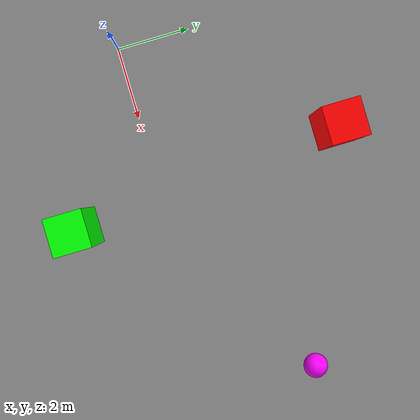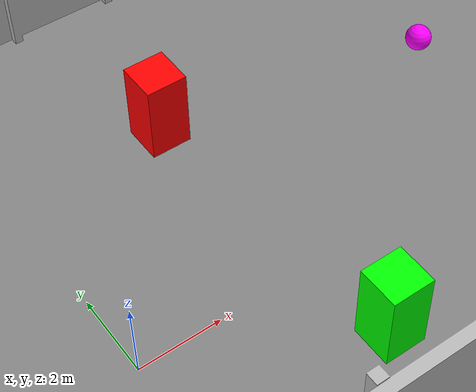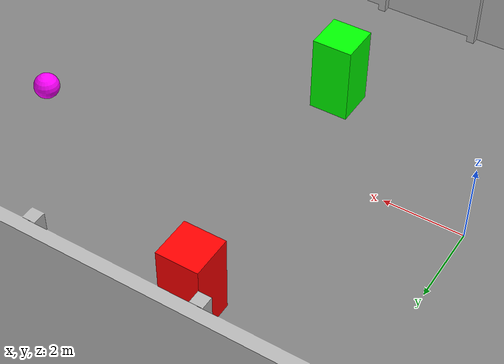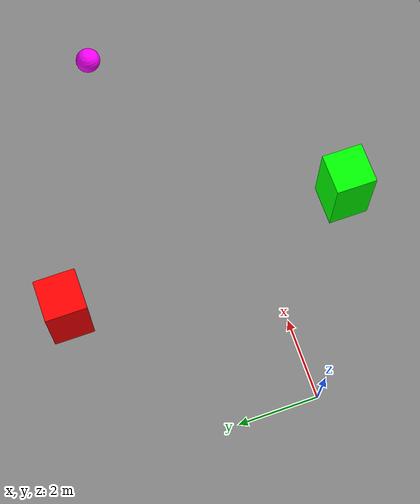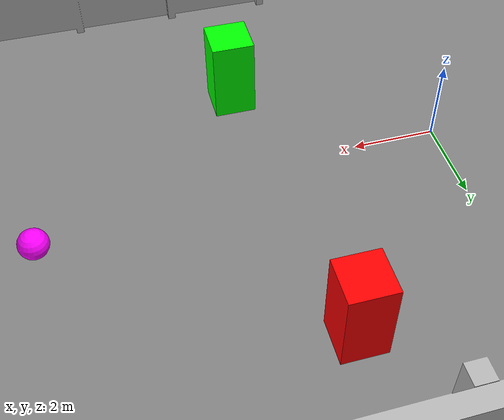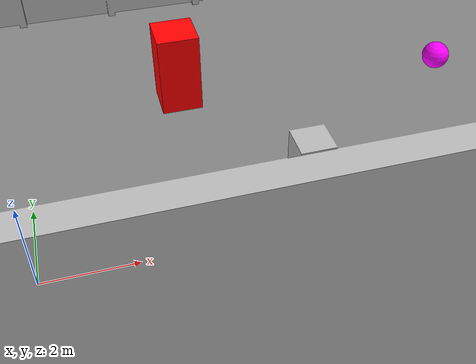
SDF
<sdf version="1.10">
 <world name="cranavgym_drone_sim">
  <physics name="5ms" type="ignored">
   <max_step_size>0.0060000000000000001</max_step_size>
   <real_time_factor>1</real_time_factor>
  </physics>
  <plugin name="gz::sim::systems::Physics" filename="gz-sim-physics-system"/>
  <plugin name="gz::sim::systems::SceneBroadcaster" filename="gz-sim-scene-broadcaster-system"/>
  <plugin name="gz::sim::systems::UserCommands" filename="gz-sim-user-commands-system"/>
  <plugin name="gz::sim::systems::Sensors" filename="gz-sim-sensors-system">
   <render_engine>ogre2</render_engine>
  </plugin>
  <gravity>0 0 -9.8000000000000007</gravity>
  <magnetic_field>5.5644999999999998e-06 2.2875799999999999e-05 -4.2388400000000002e-05</magnetic_field>
  <atmosphere type="adiabatic"/>
  <scene>
   <ambient>0.400000006 0.400000006 0.400000006 1</ambient>
   <background>0.699999988 0.699999988 0.699999988 1</background>
   <shadows>false</shadows>
  </scene>
  <include>
   <uri>file:///home/paris/cranfield-ros2-drone-ws/src/my_drone_sim/models/flight_arena</uri>
   <name>flight_arena</name>
  </include>
  <include>
   <uri>file:///home/paris/cranfield-ros2-drone-ws/src/my_drone_sim/models/goal</uri>
   <name>goal</name>
   <pose>9.392970085144043 2.6092100143432617 1.9244006872177124 0 0 0</pose>
  </include>
  <include>
   <uri>file:///home/paris/cranfield-ros2-drone-ws/src/my_drone_sim/models/red_box</uri>
   <name>red_box</name>
   <pose>3.7851901054382515 5.0201802253722274 1.0999990992111006 -1.5236740656852524e-16 -4.641351546156203e-17 2.9599521786766593e-16</pose>
  </include>
  <include>
   <uri>file:///home/paris/cranfield-ros2-drone-ws/src/my_drone_sim/models/green_box</uri>
   <name>green_box</name>
   <pose>4.5066299438476376 -2.3598799705505371 1.0999990996104259 -1.5538416812161362e-18 7.2210260754845823e-17 7.6527475355034437e-16</pose>
  </include>
  <light name="sun" type="directional">
   <pose>0 0 1000 0 0 0</pose>
   <intensity>1</intensity>
   <direction>-0.5 0.10000000000000001 -0.90000000000000002</direction>
   <diffuse>0.800000012 0.800000012 0.800000012 1</diffuse>
   <specular>0.200000003 0.200000003 0.200000003 1</specular>
   <attenuation>
    <range>1005</range>
    <linear>0.0099999997764825821</linear>
    <constant>0.89999997615814209</constant>
    <quadratic>0.0010000000474974513</quadratic>
   </attenuation>
   <spot><inner_angle>0</inner_angle><outer_angle>0</outer_angle><falloff>0</falloff></spot>
  </light>
 </world>
</sdf>

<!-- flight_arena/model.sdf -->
<sdf version="1.6">
  <model name="flight_arena">
    <static>true</static>
    <link name="link">
      <visual name="vis">
        <geometry>
          <mesh><uri>Flight_arena_3.dae</uri></mesh>
        </geometry>
      </visual>
      <collision name="coll">
        <geometry>
          <mesh><uri>Flight_arena_3.dae</uri></mesh>
        </geometry>
      </collision>
    </link>
  </model>
</sdf>

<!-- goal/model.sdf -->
<sdf version="1.6">
  <model name="goal">
    <pose frame=''>0 0 0.5 0 0 0</pose>
    <link name="link">
      <visual name="visual">
        <geometry>
          <sphere>
            <radius>0.3</radius>
          </sphere>
        </geometry>
        <material>
          <ambient>1 0 1</ambient>
          <diffuse>1 0 1</diffuse>
          <specular>0.1 0.1 0.1 1</specular>
          <emissive>0 0 0 1</emissive>
        </material>
      </visual>
      <self_collide>0</self_collide>
      <kinematic>0</kinematic>
      <gravity>0</gravity>
    </link>
  </model>
</sdf>

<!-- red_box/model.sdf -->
<sdf version="1.6">
  <model name="red_box">
    <pose frame=''>0 0 1 0 -0 0</pose>
    <link name="link">
      <collision name="collision">
        <geometry>
          <box>
            <size>1 1 2</size>
          </box>
        </geometry>
      </collision>
      <visual name="visual">
        <geometry>
          <box>
            <size>1 1 2</size>
          </box>
        </geometry>
        <material>
          <ambient>1 0 0</ambient>
          <diffuse>1 0 0</diffuse>
          <specular>0.1 0.1 0.1 1</specular>
          <emissive>0 0 0 1</emissive>
        </material>
      </visual>
    </link>
  </model>
</sdf>

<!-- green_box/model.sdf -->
<sdf version="1.6">
  <model name="green_box">
    <pose frame=''>0 0 1 0 -0 0</pose>
    <link name="link">
      <collision name="collision">
        <geometry>
          <box>
            <size>1 1 2</size>
          </box>
        </geometry>
      </collision>
      <visual name="visual">
        <geometry>
          <box>
            <size>1 1 2</size>
          </box>
        </geometry>
        <material>
          <ambient>0 1 0</ambient>
          <diffuse>0 1 0</diffuse>
          <specular>0.1 0.1 0.1 1</specular>
          <emissive>0 0 0 1</emissive>
        </material>
      </visual>
    </link>
  </model>
</sdf>
